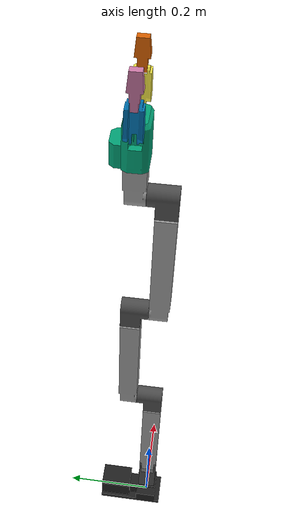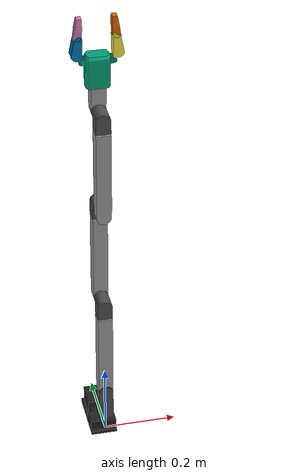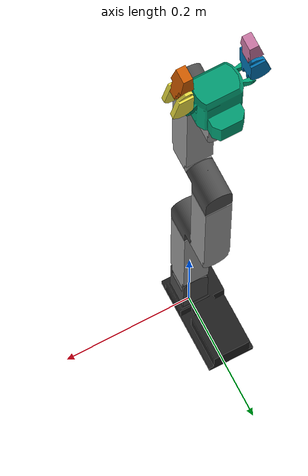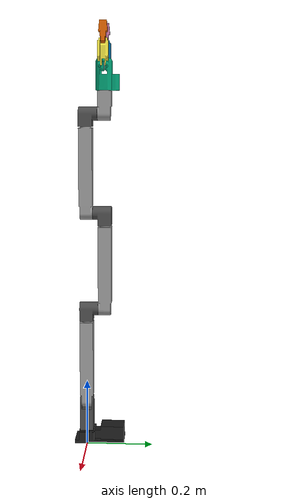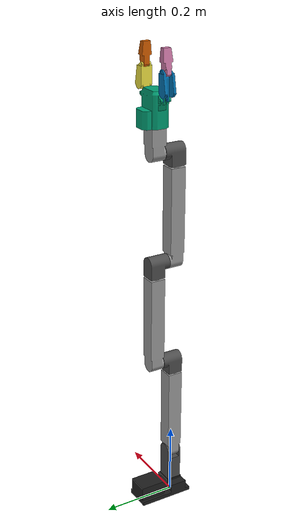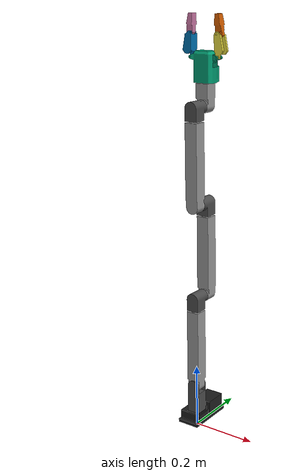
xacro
<?xml version="1.0"?>
<robot name="defaultMantis" xmlns:xacro="http://www.ros.org/wiki/xacro">

	<link name="world"/>
	<xacro:include filename="$(find mantis)/model/arm_gazebo.urdf.xacro" />
    <xacro:mantis_gazebo env_base="world">
        <origin xyz="0 0 0.01" rpy="0 0 0" />
    </xacro:mantis_gazebo>
</robot>

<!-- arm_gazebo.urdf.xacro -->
<robot name="mantis"
       xmlns:xacro="http://www.ros.org/wiki/xacro" >

<xacro:macro name="mantis_gazebo" params="env_base *origin">

    <!-- Include the base model here before adding gazebo-specific blocks -->
    <!-- This include simply defines a macro for defining an arm -->
    <xacro:include filename="$(find mantis)/model/arm.urdf" />
    <!-- Call the arm definition with a given base and origin -->
    <xacro:mantis_arm env_base="${env_base}" >
        <xacro:insert_block name="origin" />
    </xacro:mantis_arm>

    <!--             PLUGINS               -->

    <gazebo>
        <plugin name="gazebo_ros_control" filename="libgazebo_ros_control.so">
            <robotNamespace>/mantis</robotNamespace>
        </plugin>
    </gazebo>

    <xacro:macro name="create_transmission" params="joint_name">
        <transmission name="${joint_name}_transmission">
            <type>transmission_interface/SimpleTransmission</type>
            <joint name="${joint_name}">
                <hardwareInterface>EffortJointInterface</hardwareInterface>
            </joint>
            <actuator name="${joint_name}_motor">
                <hardwareInterface>EffortJointInterface</hardwareInterface>
            </actuator>
        </transmission>
    </xacro:macro>

    <!-- Create a transmission for each joint in the urdf model-->
    <xacro:create_transmission joint_name="J1_roll" />
    <xacro:create_transmission joint_name="J2_pitch" />
    <xacro:create_transmission joint_name="J3_roll" />
    <xacro:create_transmission joint_name="J4_pitch" />
    <xacro:create_transmission joint_name="J5_roll" />
    <xacro:create_transmission joint_name="J6_pitch" />
    <xacro:create_transmission joint_name="J7_roll" />
    <xacro:create_transmission joint_name="J8_pitch" />
    <xacro:create_transmission joint_name="J9_wrist" />

    <xacro:create_transmission joint_name="J1_L_wrist" />
    <xacro:create_transmission joint_name="J1_R_wrist" />

    <!-- Friction
        Detailed description needed-->

    <xacro:macro name="default_material">
        <implicitSpringDamper>1</implicitSpringDamper>
        <mu1>100000</mu1>
        <mu2>100000</mu2>
        <kp>100.0</kp>
        <kd>0.01</kd>
    </xacro:macro>

    <!--           Materials               -->
    <gazebo reference="base_link">
        <material>
            Gazebo/Black
        </material>
        <xacro:default_material/>
    </gazebo>

    <gazebo reference="B1">
        <material>
            Gazebo/DarkGrey
        </material>
        <xacro:default_material/>
    </gazebo>

    <gazebo reference="B2">
        <material>
            Gazebo/Grey
        </material>
        <xacro:default_material/>
    </gazebo>

    <gazebo reference="B3">
        <material>
            Gazebo/DarkGrey
        </material>
        <xacro:default_material/>
    </gazebo>

    <gazebo reference="B4">
        <material>
            Gazebo/Grey
        </material>
        <xacro:default_material/>
    </gazebo>

    <gazebo reference="B5">
        <material>
            Gazebo/DarkGrey
        </material>
        <xacro:default_material/>
    </gazebo>

    <gazebo reference="B6">
        <material>
            Gazebo/Grey
        </material>
        <xacro:default_material/>
    </gazebo>

    <gazebo reference="B7">
        <material>
            Gazebo/DarkGrey
        </material>
        <xacro:default_material/>
    </gazebo>

    <gazebo reference="B8">
        <material>
            Gazebo/Grey
        </material>
        <xacro:default_material/>
    </gazebo>

    <gazebo reference="Hand">
        <material>
            Gazebo/SkyBlue
        </material>
        <xacro:default_material/>
    </gazebo>

    <gazebo reference="Plate">
        <material>
            Gazebo/Turquoise
        </material>
        <xacro:default_material/>
    </gazebo>

</xacro:macro>
</robot>

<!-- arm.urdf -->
<robot name="MantisArm"
       xmlns:xacro="http://www.ros.org/wiki/xacro" >

<xacro:macro name="mantis_arm" params="env_base *origin">

    <!--        Xacro Initialization       -->

    <!-- ========PROPERTIES======= -->

    <!-- xacro:property name="pi" value="3.1415926535" / -->

    <!-- Damping and Friction values used in all joint definitions -->
    <xacro:property name="damping_const" value="0.25" />
    <xacro:property name="friction_const" value="0.25" />

    <!-- Physical measurements of the components -->
    <xacro:property name="arm_length" value="0.290" />
    <xacro:property name="shoulder_length" value="${0.054+0.002}" />  <!-- measured to edge +2mm gap -->

    <!-- Formal axis-to-axis arm segment lengths -->
    <xacro:property name="L1" value="0.089" />
    <xacro:property name="L2" value="${arm_length}" />
    <xacro:property name="L3" value="${shoulder_length}" />
    <xacro:property name="L4" value="${arm_length}" />
    <xacro:property name="L5" value="${shoulder_length}" />
    <xacro:property name="L6" value="${arm_length}" />
    <xacro:property name="L7" value="${shoulder_length}" />
    <xacro:property name="L8" value="0" />

    <!-- Alpha angles (radians) from the DH parameters of the arm -->
    <xacro:property name="a1" value=" 0" />
    <xacro:property name="a2" value="-${pi/2}" />
    <xacro:property name="a3" value=" ${pi/2}" />
    <xacro:property name="a4" value="-${pi/2}" />
    <xacro:property name="a5" value=" ${pi/2}" />
    <xacro:property name="a6" value="-${pi/2}" />
    <xacro:property name="a7" value=" ${pi/2}" />
    <xacro:property name="a8" value="-${pi/2}" />

    <!-- d lengths from the DH parameters of the arm -->
    <xacro:property name="d1" value=" ${L1}" />
    <xacro:property name="d2" value=" 0" />
    <xacro:property name="d3" value=" ${L2}" />
    <xacro:property name="d4" value=" ${L3}" />
    <xacro:property name="d5" value=" ${L4}" />
    <xacro:property name="d6" value="-${L5}" />
    <xacro:property name="d7" value=" ${L6}" />
    <xacro:property name="d8" value=" ${L7}" />

    <!-- Base Height: Height of the fixed base of the arm. -->
    <xacro:property name="base_offset" value="0 0 ${d1+0.04}" />

    <xacro:property name="B1_offset" value="0 0 ${d2}" />
    <xacro:property name="B2_alignment" value="${a2} 0 0" />

    <!-- J3 Properties (Roll) -->
    <xacro:property name="B2_offset" value="0 -${d3} 0" /> <!-- negative to account for the down-facing axis of B2 -->
    <xacro:property name="B3_alignment" value="${a3} 0 0" />

    <!-- J4 Properties (Pitch) -->
    <xacro:property name="B3_offset" value="0 ${d4} 0" />
    <xacro:property name="B4_alignment" value="${a4} 0 0" />

    <!-- J5 Properties (Roll) -->
    <xacro:property name="B4_offset" value="0 -${d5} 0" />
    <xacro:property name="B5_alignment" value="${a5} 0 0" />

    <!-- J6 Properties (Pitch) -->
    <xacro:property name="B5_offset" value="0 ${d6} 0" />
    <xacro:property name="B6_alignment" value="${a6} 0 0" />

    <!-- J7 Properties (Roll) -->
    <xacro:property name="B6_offset" value="0 -${d7} 0" />
    <xacro:property name="B7_alignment" value="${a7} 0 0" />

    <!-- J8 Properties (Pitch) -->
    <xacro:property name="B7_offset" value="0 ${d8} 0" />
    <xacro:property name="B8_alignment" value="${a8} 0 0" />

    <!-- Wrist Properties (Roll) -->
    <xacro:property name="B8_offset" value="0 -0.067 0" />

    <!-- Plate Properties (Fixed) -->
    <xacro:property name="palm_offset" value="-0.03803 -0.00128 0.28085" />
    <xacro:property name="palm_alignment" value="${pi/2} 0 0" />

    <xacro:property name="knuckle_r_offset" value="-0.04334 0 0.071569" />
    <xacro:property name="knuckle_l_offset" value=" 0.04334 0 0.071569" />
    <xacro:property name="knuckle_alignment" value="-${pi/2} 0 0" />

    <xacro:property name="finger_r_offset" value=" 0 -0.06789 0 " />
    <xacro:property name="finger_l_offset" value=" 0 -0.06789 0 " />
    <xacro:property name="finger_alignment" value="0 0 0" />

    <!-- ========MACROS======= -->

    <xacro:macro name="load_element" params="element_name mesh *inertial_tensor">
        <link name= "${element_name}">
            <visual>
                <origin rpy="0 0 0" xyz="0 0 0" />
                <geometry>
                    <mesh filename="package://mantis/meshes/${mesh}" />
                </geometry>
            </visual>

            <xacro:insert_block name="inertial_tensor"/>

        </link>
    </xacro:macro>

    <xacro:macro name="load_solid_element" params="element_name mesh *inertial_tensor">
        <link name= "${element_name}">
            <visual>
                <origin rpy="0 0 0" xyz="0 0 0" />
                <geometry>
                    <mesh filename="package://mantis/meshes/${mesh}" />
                </geometry>
            </visual>

            <collision>
                <origin rpy="0 0 0" xyz="0 0 0" />
                <geometry>
                    <mesh filename="package://mantis/meshes/${mesh}" />
                </geometry>
            </collision>

            <xacro:insert_block name="inertial_tensor"/>

        </link>
    </xacro:macro>

    <!-- Create a revolute joint between two elements -->
    <xacro:macro name="join_elements" params="joint_name parent child offset alignment">
        <joint name="${joint_name}" type="continuous" >
            <parent link="${parent}" />
            <child link="${child}" />
            <origin xyz="${offset}" rpy="${alignment}" />
            <axis xyz="0 0 1">
                <dynamics damping="${damping_const}" friction="${friction_const}"/>
            </axis>
            <limit velocity="10" effort="30.0" />
        </joint>
    </xacro:macro>

<!--     Inertia
        This loads in the inertial values of the arm and shoulder
        mass: kg
        inertials: kg*m^2
         -->
    <xacro:macro name="arm_inertia" > <!-- B2 Values, close to B4 & B6 -->
        <inertial>
            <mass value="0.383"/>
            <inertia ixx="0.008240" iyy="0.000117" izz="0.008234" ixy="0" iyz="0" ixz="0" />
        </inertial>
    </xacro:macro>

    <xacro:macro name="shoulder_inertia" > <!-- B3 Values, close to B5 & B7 -->
        <inertial>
            <mass value="0.320"/>
            <inertia ixx="0.000272" iyy="0.000101" izz="0.000303" ixy="0" iyz="0" ixz="0" />
        </inertial>
    </xacro:macro>

    <!--              Links                -->

    <!-- ======== Fixed Base ======== -->
    <!-- These inertial values are rough estimates -->

    <xacro:load_element element_name="base_link" mesh="base.dae">
        <inertial>
            <mass value="0.400"/>
            <inertia ixx="0.08000" iyy="0.05000" izz="0.06000" ixy="0.001" iyz="0.002" ixz="0.001" />
        </inertial>
    </xacro:load_element>

    <!-- ======== Body Element 1 ======== -->
    <!--            Short Arm             -->
    <!-- These inertial values are derived from solidworks -->
    <xacro:load_element element_name="B1" mesh="B1.dae">
        <inertial>
            <mass value="0.175"/>
            <inertia ixx="0.000586" iyy="0.000579" izz="0.000068" ixy="0" iyz="0" ixz="0" />
        </inertial>
    </xacro:load_element>

    <!-- ======== Body Element 2 ======== -->
    <!--               Arm                -->
    <xacro:load_element element_name="B2" mesh="B2.dae">
        <xacro:arm_inertia/>
    </xacro:load_element>

    <!-- ======== Body Element 3 ======== -->
    <!--             Shoulder             -->
    <xacro:load_element element_name="B3" mesh="B3.dae">
        <xacro:shoulder_inertia/>
    </xacro:load_element>

    <!-- ======== Body Element 4 ======== -->
    <!--               Arm                -->
    <xacro:load_element element_name="B4" mesh="B4.dae">
        <xacro:arm_inertia/>
    </xacro:load_element>

    <!-- ======== Body Element 5 ======== -->
    <!--             Shoulder             -->
    <xacro:load_element element_name="B5" mesh="B5.dae">
        <xacro:shoulder_inertia/>
    </xacro:load_element>

    <!-- ======== Body Element 6 ======== -->
    <!--               Arm                -->
    <xacro:load_element element_name="B6" mesh="B6.dae">
        <xacro:arm_inertia/>
    </xacro:load_element>

    <!-- ======== Body Element 7 ======== -->
    <!--             Shoulder             -->
    <xacro:load_element element_name="B7" mesh="B7.dae">
        <xacro:shoulder_inertia/>
    </xacro:load_element>

    <!-- ======== Body Element 8 ======== -->
    <!--              Wrist               -->
    <!-- These inertial values are estimates -->
    <xacro:load_element element_name="B8" mesh="B8.dae">
        <inertial>
            <mass value="0.150"/>
            <inertia ixx="0.000586" iyy="0.000068" izz="0.000579" ixy="0" iyz="0" ixz="0" />
        </inertial>
    </xacro:load_element>

    <!-- ======== Body Element 9 ======== -->
    <!--              Palm                -->
    <!-- These inertial values are estimates -->
    <xacro:load_solid_element element_name="Palm" mesh="gripper/palm.dae">
        <inertial>
            <mass value="0.400"/>
            <inertia ixx="0.5000" iyy="0.5000" izz="0.6000" ixy="0.000" iyz="0.00" ixz="0.00" />
        </inertial>
    </xacro:load_solid_element>

    <!-- ======== Body Element 10 ======== -->
    <!--              Proximal L                -->
    <!-- These inertial values are estimates -->
    <xacro:load_solid_element element_name="Proximal_L" mesh="gripper/proximal_L.dae">
        <inertial>
            <mass value="0.010"/>
            <inertia ixx="0.0006" iyy="0.0002" izz="0.0006" ixy="0.0" iyz="0.0"  ixz="0.0" />
        </inertial>
    </xacro:load_solid_element>

    <!-- ======== Body Element 11 ======== -->
    <!--              Proximal R                -->
    <!-- These inertial values are estimates -->
    <xacro:load_solid_element element_name="Proximal_R" mesh="gripper/proximal_R.dae">
        <inertial>
            <mass value="0.010"/>
            <inertia ixx="0.0006" iyy="0.0002" izz="0.0006" ixy="0.0" iyz="0.0"  ixz="0.0" />
        </inertial>
    </xacro:load_solid_element>

    <!-- ======== Body Element 11 ======== -->
    <!--              Distal L               -->
    <!-- These inertial values are estimates -->
    <xacro:load_solid_element element_name="Distal_L" mesh="gripper/distal_L.dae">
        <inertial>
            <mass value="0.010"/>
            <inertia ixx="0.0006" iyy="0.0002" izz="0.0006" ixy="0.0" iyz="0.0"  ixz="0.0" />
        </inertial>
    </xacro:load_solid_element>

    <!-- ======== Body Element 11 ======== -->
    <!--              Distal R                -->
    <!-- These inertial values are estimates -->
    <xacro:load_solid_element element_name="Distal_R" mesh="gripper/distal_R.dae">
        <inertial>
            <mass value="0.010"/>
            <inertia ixx="0.0006" iyy="0.0002" izz="0.0006" ixy="0.0" iyz="0.0"  ixz="0.0" />
        </inertial>
    </xacro:load_solid_element>

    <!--             Joints                -->

    <!-- ======== Joint 0 (fixed) ========
        This joint places the arm within the global environment
        using this file's arguments env_base and origin
    -->
    <joint name="anchor" type="fixed">
        <xacro:insert_block name="origin" />
        <parent link="${env_base}" />
        <child link="base_link" />
    </joint>

    <!-- ======== Joint 1 (roll) ======== -->
    <xacro:join_elements joint_name="J1_roll"  parent="base_link" child="B1" offset="${base_offset}" alignment="0 0 0" />

    <!-- ======== Joint 2 (pitch) ======== -->
    <xacro:join_elements joint_name="J2_pitch" parent="B1" child="B2" offset="${B1_offset}" alignment="${B2_alignment}" />

    <!-- ======== Joint 3 (roll)  ======== -->
    <xacro:join_elements joint_name="J3_roll"  parent="B2" child="B3" offset="${B2_offset}" alignment="${B3_alignment}" />

    <!-- ======== Joint 4 (pitch) ======== -->
    <xacro:join_elements joint_name="J4_pitch" parent="B3" child="B4" offset="${B3_offset}" alignment="${B4_alignment}" />

    <!-- ======== Joint 5 (roll)  ======== -->
    <xacro:join_elements joint_name="J5_roll"  parent="B4" child="B5" offset="${B4_offset}" alignment="${B5_alignment}" />

    <!-- ======== Joint 6 (pitch) ======== -->
    <xacro:join_elements joint_name="J6_pitch" parent="B5" child="B6" offset="${B5_offset}" alignment="${B6_alignment}" />

    <!-- ======== Joint 7 (roll) ======== -->
    <xacro:join_elements joint_name="J7_roll"  parent="B6" child="B7" offset="${B6_offset}" alignment="${B7_alignment}" />

    <!-- ======== Joint 8 (pitch) ======== -->
    <xacro:join_elements joint_name="J8_pitch" parent="B7" child="B8" offset="${B7_offset}" alignment="${B8_alignment}" />

    <!-- ======== Joint 9 (wrist) ======== -->
    <xacro:join_elements joint_name="J9_wrist" parent="B8" child="Palm" offset="${B8_offset}" alignment="${palm_alignment}" />

    <!-- ======== Joint 9 (wrist) ======== -->
    <xacro:join_elements joint_name="J1_L_wrist" parent="Palm" child="Proximal_L" offset="${knuckle_l_offset}" alignment="${knuckle_alignment}" />

    <!-- ======== Joint 9 (wrist) ======== -->
    <xacro:join_elements joint_name="J1_R_wrist" parent="Palm" child="Proximal_R" offset="${knuckle_r_offset}" alignment="${knuckle_alignment}" />

    <!-- ======== Joint 9 (wrist) ======== -->
    <xacro:join_elements joint_name="J2_L_wrist" parent="Proximal_L" child="Distal_L" offset="${finger_l_offset}" alignment="${finger_alignment}" />

    <!-- ======== Joint 9 (wrist) ======== -->
    <xacro:join_elements joint_name="J2_R_wrist" parent="Proximal_R" child="Distal_R" offset="${finger_r_offset}" alignment="${finger_alignment}" />

</xacro:macro>
</robot>
